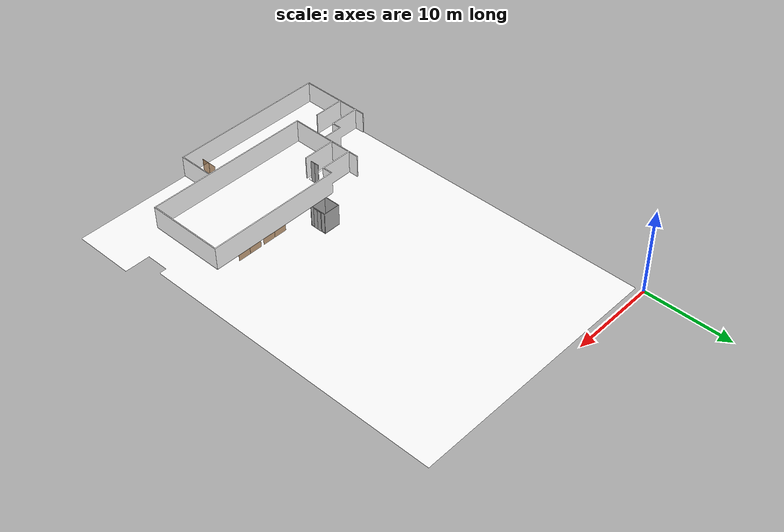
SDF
<sdf version="1.7">
 <world name="sim_world">
  <physics name="10ms" type="ode">
   <max_step_size>0.01</max_step_size>
   <real_time_factor>1.0</real_time_factor>
  </physics>
  <plugin filename="gz-sim-physics-system" name="gz::sim::systems::Physics"/>
  <plugin filename="gz-sim-user-commands-system" name="gz::sim::systems::UserCommands"/>
  <plugin filename="gz-sim-scene-broadcaster-system" name="gz::sim::systems::SceneBroadcaster"/>
  <plugin filename="libdoor.so" name="door"/>
  <plugin filename="liblift.so" name="lift"/>
  <scene><ambient>1 1 1</ambient><background>0.8 0.8 0.8</background><grid>false</grid></scene>
  <light type="directional" name="sun">
   <pose>0 0 10 0 0 0</pose>
   <diffuse>1 1 1 1</diffuse>
   <specular>0.2 0.2 0.2 1</specular>
   <attenuation>
    <range>1000</range>
    <constant>0.09</constant>
    <linear>0.001</linear>
    <quadratic>0.001</quadratic>
   </attenuation>
   <direction>-0.5 0.1 -0.9</direction>
  </light>
  <model name="main_door_right">
   <pose>22.008558835061166 -31.59895041664423 0.0 0 0 3.141583949309029</pose>
   <link name="right">
    <pose>0.7292035209816043 0 1.11 0 0 0</pose>
    <visual name="right_visual">
     <geometry><box><size>1.4484070419632087 0.03 2.2</size></box></geometry>
     <material>
      <ambient>0.5 0.25 0 0.6</ambient>
      <diffuse>0.5 0.25 0 0.6</diffuse>
      <pbr><metal><metalness>0.0</metalness></metal></pbr>
     </material>
    </visual>
    <collision name="right_collision">
     <geometry><box><size>1.4484070419632087 0.03 2.2</size></box></geometry>
     <surface><contact><collide_bitmask>0x02</collide_bitmask></contact></surface>
    </collision>
    <inertial>
     <mass>50.0</mass>
     <inertia><ixx>20.17041666666667</ixx><iyy>28.907845663369223</iyy><izz>8.744928996702553</izz></inertia>
    </inertial>
   </link>
   <joint name="right_joint" type="revolute">
    <parent>world</parent>
    <child>right</child>
    <axis><xyz>0 0 -1</xyz><limit><lower>0</lower><upper>1.57</upper></limit></axis>
    <pose>0.7292035209816043 0 0 0 0 0</pose>
   </joint>
   <link name="left">
    <pose>-0.7292035209816043 0 1.11 0 0 0</pose>
    <visual name="left_visual">
     <geometry><box><size>1.4484070419632087 0.03 2.2</size></box></geometry>
     <material>
      <ambient>0.5 0.25 0 0.6</ambient>
      <diffuse>0.5 0.25 0 0.6</diffuse>
      <pbr><metal><metalness>0.0</metalness></metal></pbr>
     </material>
    </visual>
    <collision name="left_collision">
     <geometry><box><size>1.4484070419632087 0.03 2.2</size></box></geometry>
     <surface><contact><collide_bitmask>0x02</collide_bitmask></contact></surface>
    </collision>
    <inertial>
     <mass>50.0</mass>
     <inertia><ixx>20.17041666666667</ixx><iyy>28.907845663369223</iyy><izz>8.744928996702553</izz></inertia>
    </inertial>
   </link>
   <joint name="left_joint" type="revolute">
    <parent>world</parent>
    <child>left</child>
    <axis><xyz>0 0 -1</xyz><limit><lower>-1.57</lower><upper>0</upper></limit></axis>
    <pose>-0.7292035209816043 0 0 0 0 0</pose>
   </joint>
   <plugin name="register_component" filename="libregister_component.so">
    <component name="Door">
     <v_max_door>0.5</v_max_door>
     <a_max_door>0.3</a_max_door>
     <a_nom_door>0.15</a_nom_door>
     <dx_min_door>0.01</dx_min_door>
     <f_max_door>500.0</f_max_door>
     <ros_interface>true</ros_interface>
     <door name="main_door_right" type="DoubleSwingDoor" left_joint_name="left_joint" right_joint_name="right_joint"/>
    </component>
   </plugin>
  </model>
  <model name="main_door_left">
   <pose>18.701532070316247 -31.60091804622047 0.0 0 0 0.001323547354239751</pose>
   <link name="right">
    <pose>0.7481124617256443 0 1.11 0 0 0</pose>
    <visual name="right_visual">
     <geometry><box><size>1.4862249234512885 0.03 2.2</size></box></geometry>
     <material>
      <ambient>0.5 0.25 0 0.6</ambient>
      <diffuse>0.5 0.25 0 0.6</diffuse>
      <pbr><metal><metalness>0.0</metalness></metal></pbr>
     </material>
    </visual>
    <collision name="right_collision">
     <geometry><box><size>1.4862249234512885 0.03 2.2</size></box></geometry>
     <surface><contact><collide_bitmask>0x02</collide_bitmask></contact></surface>
    </collision>
    <inertial>
     <mass>50.0</mass>
     <inertia><ixx>20.17041666666667</ixx><iyy>29.370268846199124</iyy><izz>9.207352179532453</izz></inertia>
    </inertial>
   </link>
   <joint name="right_joint" type="revolute">
    <parent>world</parent>
    <child>right</child>
    <axis><xyz>0 0 1</xyz><limit><lower>0</lower><upper>1.57</upper></limit></axis>
    <pose>0.7481124617256443 0 0 0 0 0</pose>
   </joint>
   <link name="left">
    <pose>-0.7481124617256443 0 1.11 0 0 0</pose>
    <visual name="left_visual">
     <geometry><box><size>1.4862249234512885 0.03 2.2</size></box></geometry>
     <material>
      <ambient>0.5 0.25 0 0.6</ambient>
      <diffuse>0.5 0.25 0 0.6</diffuse>
      <pbr><metal><metalness>0.0</metalness></metal></pbr>
     </material>
    </visual>
    <collision name="left_collision">
     <geometry><box><size>1.4862249234512885 0.03 2.2</size></box></geometry>
     <surface><contact><collide_bitmask>0x02</collide_bitmask></contact></surface>
    </collision>
    <inertial>
     <mass>50.0</mass>
     <inertia><ixx>20.17041666666667</ixx><iyy>29.370268846199124</iyy><izz>9.207352179532453</izz></inertia>
    </inertial>
   </link>
   <joint name="left_joint" type="revolute">
    <parent>world</parent>
    <child>left</child>
    <axis><xyz>0 0 1</xyz><limit><lower>-1.57</lower><upper>0</upper></limit></axis>
    <pose>-0.7481124617256443 0 0 0 0 0</pose>
   </joint>
   <plugin name="register_component" filename="libregister_component.so">
    <component name="Door">
     <v_max_door>0.5</v_max_door>
     <a_max_door>0.3</a_max_door>
     <a_nom_door>0.15</a_nom_door>
     <dx_min_door>0.01</dx_min_door>
     <f_max_door>500.0</f_max_door>
     <ros_interface>true</ros_interface>
     <door name="main_door_left" type="DoubleSwingDoor" left_joint_name="left_joint" right_joint_name="right_joint"/>
    </component>
   </plugin>
  </model>
  <model name="green_room_door">
   <pose>17.205308457391418 -34.86200383395631 0.0 0 0 1.5707963267948966</pose>
   <link name="right">
    <pose>0 0 1.11 0 0 0</pose>
    <visual name="right_visual">
     <geometry><box><size>0.9636592806289792 0.03 2.2</size></box></geometry>
     <material>
      <ambient>0.5 0.25 0 0.6</ambient>
      <diffuse>0.5 0.25 0 0.6</diffuse>
      <pbr><metal><metalness>0.0</metalness></metal></pbr>
     </material>
    </visual>
    <collision name="right_collision">
     <geometry><box><size>0.9636592806289792 0.03 2.2</size></box></geometry>
     <surface><contact><collide_bitmask>0x02</collide_bitmask></contact></surface>
    </collision>
    <inertial>
     <mass>50.0</mass>
     <inertia><ixx>20.17041666666667</ixx><iyy>24.035996704759846</iyy><izz>3.8730800380931742</izz></inertia>
    </inertial>
   </link>
   <joint name="right_joint" type="revolute">
    <parent>world</parent>
    <child>right</child>
    <axis><xyz>0 0 1</xyz><limit><lower>0</lower><upper>1.57</upper></limit></axis>
    <pose>0.4868296403144896 0 0 0 0 0</pose>
   </joint>
   <plugin name="register_component" filename="libregister_component.so">
    <component name="Door">
     <v_max_door>0.5</v_max_door>
     <a_max_door>0.3</a_max_door>
     <a_nom_door>0.15</a_nom_door>
     <dx_min_door>0.01</dx_min_door>
     <f_max_door>500.0</f_max_door>
     <ros_interface>true</ros_interface>
     <door name="green_room_door" type="SwingDoor" left_joint_name="empty_joint" right_joint_name="right_joint"/>
    </component>
   </plugin>
  </model>
  <model name="side_room_door">
   <pose>23.466965876969127 -34.816849908777726 0.0 0 0 1.5707963267948966</pose>
   <static>true</static>
   <link name="right">
    <pose>0 0 1.11 0 0 0</pose>
    <visual name="right_visual">
     <geometry><box><size>0.8754333093073166 0.03 2.2</size></box></geometry>
     <material>
      <ambient>0.5 0.25 0 0.6</ambient>
      <diffuse>0.5 0.25 0 0.6</diffuse>
      <pbr><metal><metalness>0.0</metalness></metal></pbr>
     </material>
    </visual>
    <collision name="right_collision">
     <geometry><box><size>0.8754333093073166 0.03 2.2</size></box></geometry>
     <surface><contact><collide_bitmask>0x02</collide_bitmask></contact></surface>
    </collision>
    <inertial>
     <mass>50.0</mass>
     <inertia><ixx>20.17041666666667</ixx><iyy>23.359931162686504</iyy><izz>3.1970144960198326</izz></inertia>
    </inertial>
   </link>
   <joint name="right_joint" type="revolute">
    <parent>world</parent>
    <child>right</child>
    <axis><xyz>0 0 -1</xyz><limit><lower>0</lower><upper>1.57</upper></limit></axis>
    <pose>0.4427166546536583 0 0 0 0 0</pose>
   </joint>
  </model>
  <model name="bottom_stairs_door">
   <pose>17.004381741696562 -43.25836162237169 0.0 0 0 1.5629671816468744</pose>
   <static>true</static>
   <link name="right">
    <pose>0.47508285335173855 0 1.11 0 0 0</pose>
    <visual name="right_visual">
     <geometry><box><size>0.9401657067034771 0.03 2.2</size></box></geometry>
     <material>
      <ambient>0.5 0.25 0 0.6</ambient>
      <diffuse>0.5 0.25 0 0.6</diffuse>
      <pbr><metal><metalness>0.0</metalness></metal></pbr>
     </material>
    </visual>
    <collision name="right_collision">
     <geometry><box><size>0.9401657067034771 0.03 2.2</size></box></geometry>
     <surface><contact><collide_bitmask>0x02</collide_bitmask></contact></surface>
    </collision>
    <inertial>
     <mass>50.0</mass>
     <inertia><ixx>20.17041666666667</ixx><iyy>23.849631483588542</iyy><izz>3.686714816921869</izz></inertia>
    </inertial>
   </link>
   <joint name="right_joint" type="revolute">
    <parent>world</parent>
    <child>right</child>
    <axis><xyz>0 0 1</xyz><limit><lower>0</lower><upper>1.57</upper></limit></axis>
    <pose>0.47508285335173855 0 0 0 0 0</pose>
   </joint>
   <link name="left">
    <pose>-0.47508285335173855 0 1.11 0 0 0</pose>
    <visual name="left_visual">
     <geometry><box><size>0.9401657067034771 0.03 2.2</size></box></geometry>
     <material>
      <ambient>0.5 0.25 0 0.6</ambient>
      <diffuse>0.5 0.25 0 0.6</diffuse>
      <pbr><metal><metalness>0.0</metalness></metal></pbr>
     </material>
    </visual>
    <collision name="left_collision">
     <geometry><box><size>0.9401657067034771 0.03 2.2</size></box></geometry>
     <surface><contact><collide_bitmask>0x02</collide_bitmask></contact></surface>
    </collision>
    <inertial>
     <mass>50.0</mass>
     <inertia><ixx>20.17041666666667</ixx><iyy>23.849631483588542</iyy><izz>3.686714816921869</izz></inertia>
    </inertial>
   </link>
   <joint name="left_joint" type="revolute">
    <parent>world</parent>
    <child>left</child>
    <axis><xyz>0 0 1</xyz><limit><lower>-1.57</lower><upper>0</upper></limit></axis>
    <pose>-0.47508285335173855 0 0 0 0 0</pose>
   </joint>
  </model>
  <include><name>kioto_L1</name><uri>model://kioto_L1</uri></include>
  <include><name>kioto_L2</name><uri>model://kioto_L2</uri><pose>0 0 6.0 0 0 0</pose></include>
  <model name="ShaftDoor_lift_L1_door">
   <pose>14.886878955483498 -29.32402787813475 0.0 0 0 1.57</pose>
   <link name="right_door">
    <pose>0.25 0 1.25 0 0 0</pose>
    <visual name="right_door_visual">
     <geometry><box><size>0.5 0.03 2.5</size></box></geometry>
     <material>
      <ambient>0.5 0.5 0.5 1</ambient>
      <diffuse>0.7 0.7 0.7 1</diffuse>
      <specular>0.6 0.6 0.6 1</specular>
      <emissive>0.1 0.1 0.1 1</emissive>
     </material>
    </visual>
    <collision name="right_door_collision">
     <geometry><box><size>0.5 0.03 2.5</size></box></geometry>
     <surface><contact><collide_bitmask>0x02</collide_bitmask></contact></surface>
    </collision>
   </link>
   <link name="left_door">
    <pose>-0.25 0 1.25 0 0 0</pose>
    <visual name="left_door_visual">
     <geometry><box><size>0.5 0.03 2.5</size></box></geometry>
     <material>
      <ambient>0.5 0.5 0.5 1</ambient>
      <diffuse>0.7 0.7 0.7 1</diffuse>
      <specular>0.6 0.6 0.6 1</specular>
      <emissive>0.1 0.1 0.1 1</emissive>
     </material>
    </visual>
    <collision name="left_door_collision">
     <geometry><box><size>0.5 0.03 2.5</size></box></geometry>
     <surface><contact><collide_bitmask>0x02</collide_bitmask></contact></surface>
    </collision>
   </link>
   <joint name="right_joint" type="prismatic">
    <parent>world</parent>
    <child>right_door</child>
    <axis><xyz>1 0 0</xyz><limit><lower>0</lower><upper>0.5</upper></limit></axis>
   </joint>
   <joint name="left_joint" type="prismatic">
    <parent>world</parent>
    <child>left_door</child>
    <axis><xyz>1 0 0</xyz><limit><lower>-0.5</lower><upper>0</upper></limit></axis>
   </joint>
   <link name="ramp">
    <pose>0 0 -0.025 0 0 0</pose>
    <visual name="ramp_visual">
     <geometry><box><size>1.0 0.1 0.05</size></box></geometry>
     <material>
      <ambient>0.5 0.5 0.5 1</ambient>
      <diffuse>0.7 0.7 0.7 1</diffuse>
      <specular>0.6 0.6 0.6 1</specular>
      <emissive>0.1 0.1 0.1 1</emissive>
     </material>
    </visual>
    <collision name="ramp_collision">
     <geometry><box><size>1.0 0.1 0.05</size></box></geometry>
     <surface><contact><collide_bitmask>0x02</collide_bitmask></contact></surface>
    </collision>
   </link>
   <joint name="ramp_joint" type="fixed"><parent>world</parent><child>ramp</child></joint>
   <plugin name="register_component" filename="libregister_component.so">
    <component name="Door">
     <v_max_door>0.3</v_max_door>
     <a_max_door>0.2</a_max_door>
     <a_nom_door>0.1</a_nom_door>
     <dx_min_door>0.0001</dx_min_door>
     <f_max_door>35.0</f_max_door>
     <door left_joint_name="left_joint" name="ShaftDoor_lift_L1_door" right_joint_name="right_joint" type="DoubleSlidingDoor"/>
    </component>
   </plugin>
  </model>
  <model name="ShaftDoor_lift_L2_door">
   <pose>14.886878955483498 -29.32402787813475 6.0 0 0 1.57</pose>
   <link name="right_door">
    <pose>0.25 0 1.25 0 0 0</pose>
    <visual name="right_door_visual">
     <geometry><box><size>0.5 0.03 2.5</size></box></geometry>
     <material>
      <ambient>0.5 0.5 0.5 1</ambient>
      <diffuse>0.7 0.7 0.7 1</diffuse>
      <specular>0.6 0.6 0.6 1</specular>
      <emissive>0.1 0.1 0.1 1</emissive>
     </material>
    </visual>
    <collision name="right_door_collision">
     <geometry><box><size>0.5 0.03 2.5</size></box></geometry>
     <surface><contact><collide_bitmask>0x02</collide_bitmask></contact></surface>
    </collision>
   </link>
   <link name="left_door">
    <pose>-0.25 0 1.25 0 0 0</pose>
    <visual name="left_door_visual">
     <geometry><box><size>0.5 0.03 2.5</size></box></geometry>
     <material>
      <ambient>0.5 0.5 0.5 1</ambient>
      <diffuse>0.7 0.7 0.7 1</diffuse>
      <specular>0.6 0.6 0.6 1</specular>
      <emissive>0.1 0.1 0.1 1</emissive>
     </material>
    </visual>
    <collision name="left_door_collision">
     <geometry><box><size>0.5 0.03 2.5</size></box></geometry>
     <surface><contact><collide_bitmask>0x02</collide_bitmask></contact></surface>
    </collision>
   </link>
   <joint name="right_joint" type="prismatic">
    <parent>world</parent>
    <child>right_door</child>
    <axis><xyz>1 0 0</xyz><limit><lower>0</lower><upper>0.5</upper></limit></axis>
   </joint>
   <joint name="left_joint" type="prismatic">
    <parent>world</parent>
    <child>left_door</child>
    <axis><xyz>1 0 0</xyz><limit><lower>-0.5</lower><upper>0</upper></limit></axis>
   </joint>
   <link name="ramp">
    <pose>0 0 -0.025 0 0 0</pose>
    <visual name="ramp_visual">
     <geometry><box><size>1.0 0.1 0.05</size></box></geometry>
     <material>
      <ambient>0.5 0.5 0.5 1</ambient>
      <diffuse>0.7 0.7 0.7 1</diffuse>
      <specular>0.6 0.6 0.6 1</specular>
      <emissive>0.1 0.1 0.1 1</emissive>
     </material>
    </visual>
    <collision name="ramp_collision">
     <geometry><box><size>1.0 0.1 0.05</size></box></geometry>
     <surface><contact><collide_bitmask>0x02</collide_bitmask></contact></surface>
    </collision>
   </link>
   <joint name="ramp_joint" type="fixed"><parent>world</parent><child>ramp</child></joint>
   <plugin name="register_component" filename="libregister_component.so">
    <component name="Door">
     <v_max_door>0.3</v_max_door>
     <a_max_door>0.2</a_max_door>
     <a_nom_door>0.1</a_nom_door>
     <dx_min_door>0.0001</dx_min_door>
     <f_max_door>35.0</f_max_door>
     <door left_joint_name="left_joint" name="ShaftDoor_lift_L2_door" right_joint_name="right_joint" type="DoubleSlidingDoor"/>
    </component>
   </plugin>
  </model>
  <model name="lift">
   <link name="platform">
    <inertial>
     <mass>1200</mass>
     <inertia><ixx>400.25000000000006</ixx><iyy>400.25000000000006</iyy><izz>800.0</izz></inertia>
    </inertial>
    <visual name="floor_visual">
     <pose>0 0 -0.025 0 0 0</pose>
     <geometry><box><size>2.0 2.0 0.05</size></box></geometry>
     <material>
      <ambient>0.5 0.5 0.5 1</ambient>
      <diffuse>0.7 0.7 0.7 1</diffuse>
      <specular>0.6 0.6 0.6 1</specular>
      <emissive>0.1 0.1 0.1 1</emissive>
     </material>
    </visual>
    <collision name="floor_collision">
     <pose>0 0 -0.025 0 0 0</pose>
     <geometry><box><size>2.0 2.0 0.05</size></box></geometry>
     <surface><contact><collide_bitmask>0x01</collide_bitmask></contact></surface>
    </collision>
    <visual name="frontwall1_visual">
     <pose>0.0 0.975 1.25 0 0 0</pose>
     <geometry><box><size>2.0 0.05 2.5</size></box></geometry>
     <material>
      <ambient>0.5 0.5 0.5 1</ambient>
      <diffuse>0.7 0.7 0.7 1</diffuse>
      <specular>0.6 0.6 0.6 1</specular>
      <emissive>0.1 0.1 0.1 1</emissive>
     </material>
    </visual>
    <collision name="frontwall1_collision">
     <pose>0.0 0.975 1.25 0 0 0</pose>
     <geometry><box><size>2.0 0.05 2.5</size></box></geometry>
     <surface><contact><collide_bitmask>0x01</collide_bitmask></contact></surface>
    </collision>
    <visual name="backwall1_visual">
     <pose>0.0 -0.975 1.25 0 0 0</pose>
     <geometry><box><size>2.0 0.05 2.5</size></box></geometry>
     <material>
      <ambient>0.5 0.5 0.5 1</ambient>
      <diffuse>0.7 0.7 0.7 1</diffuse>
      <specular>0.6 0.6 0.6 1</specular>
      <emissive>0.1 0.1 0.1 1</emissive>
     </material>
    </visual>
    <collision name="backwall1_collision">
     <pose>0.0 -0.975 1.25 0 0 0</pose>
     <geometry><box><size>2.0 0.05 2.5</size></box></geometry>
     <surface><contact><collide_bitmask>0x01</collide_bitmask></contact></surface>
    </collision>
    <visual name="leftwall1_visual">
     <pose>-0.975 0.0 1.25 0 0 1.5707963267948966</pose>
     <geometry><box><size>1.9 0.05 2.5</size></box></geometry>
     <material>
      <ambient>0.5 0.5 0.5 1</ambient>
      <diffuse>0.7 0.7 0.7 1</diffuse>
      <specular>0.6 0.6 0.6 1</specular>
      <emissive>0.1 0.1 0.1 1</emissive>
     </material>
    </visual>
    <collision name="leftwall1_collision">
     <pose>-0.975 0.0 1.25 0 0 1.5707963267948966</pose>
     <geometry><box><size>1.9 0.05 2.5</size></box></geometry>
     <surface><contact><collide_bitmask>0x01</collide_bitmask></contact></surface>
    </collision>
    <visual name="rightwall1_visual">
     <pose>0.975 -0.725 1.25 0 0 1.5707963267948966</pose>
     <geometry><box><size>0.44999999999999996 0.05 2.5</size></box></geometry>
     <material>
      <ambient>0.5 0.5 0.5 1</ambient>
      <diffuse>0.7 0.7 0.7 1</diffuse>
      <specular>0.6 0.6 0.6 1</specular>
      <emissive>0.1 0.1 0.1 1</emissive>
     </material>
    </visual>
    <collision name="rightwall1_collision">
     <pose>0.975 -0.725 1.25 0 0 1.5707963267948966</pose>
     <geometry><box><size>0.44999999999999996 0.05 2.5</size></box></geometry>
     <surface><contact><collide_bitmask>0x01</collide_bitmask></contact></surface>
    </collision>
    <visual name="rightwall2_visual">
     <pose>0.975 0.725 1.25 0 0 1.5707963267948966</pose>
     <geometry><box><size>0.44999999999999996 0.05 2.5</size></box></geometry>
     <material>
      <ambient>0.5 0.5 0.5 1</ambient>
      <diffuse>0.7 0.7 0.7 1</diffuse>
      <specular>0.6 0.6 0.6 1</specular>
      <emissive>0.1 0.1 0.1 1</emissive>
     </material>
    </visual>
    <collision name="rightwall2_collision">
     <pose>0.975 0.725 1.25 0 0 1.5707963267948966</pose>
     <geometry><box><size>0.44999999999999996 0.05 2.5</size></box></geometry>
     <surface><contact><collide_bitmask>0x01</collide_bitmask></contact></surface>
    </collision>
   </link>
   <joint name="cabin_joint" type="prismatic">
    <parent>world</parent>
    <child>platform</child>
    <axis><xyz>0 0 1</xyz></axis>
   </joint>
   <model name="CabinDoor_lift_door">
    <pose>0.975 0.0 0 0 0 1.57</pose>
    <link name="right_door">
     <pose>0.25 0 1.25 0 0 0</pose>
     <visual name="right_door_visual">
      <geometry><box><size>0.5 0.03 2.5</size></box></geometry>
      <material>
       <ambient>0.5 0.5 0.5 1</ambient>
       <diffuse>0.7 0.7 0.7 1</diffuse>
       <specular>0.6 0.6 0.6 1</specular>
       <emissive>0.1 0.1 0.1 1</emissive>
      </material>
     </visual>
     <collision name="right_door_collision">
      <geometry><box><size>0.5 0.03 2.5</size></box></geometry>
      <surface><contact><collide_bitmask>0x02</collide_bitmask></contact></surface>
     </collision>
    </link>
    <link name="left_door">
     <pose>-0.25 0 1.25 0 0 0</pose>
     <visual name="left_door_visual">
      <geometry><box><size>0.5 0.03 2.5</size></box></geometry>
      <material>
       <ambient>0.5 0.5 0.5 1</ambient>
       <diffuse>0.7 0.7 0.7 1</diffuse>
       <specular>0.6 0.6 0.6 1</specular>
       <emissive>0.1 0.1 0.1 1</emissive>
      </material>
     </visual>
     <collision name="left_door_collision">
      <geometry><box><size>0.5 0.03 2.5</size></box></geometry>
      <surface><contact><collide_bitmask>0x02</collide_bitmask></contact></surface>
     </collision>
    </link>
    <plugin name="register_component" filename="libregister_component.so">
     <component name="Door">
      <v_max_door>0.3</v_max_door>
      <a_max_door>0.2</a_max_door>
      <a_nom_door>0.1</a_nom_door>
      <dx_min_door>0.0001</dx_min_door>
      <f_max_door>35.0</f_max_door>
      <door left_joint_name="CabinDoor_lift_door_left_joint" name="CabinDoor_lift_door" right_joint_name="CabinDoor_lift_door_right_joint" type="DoubleSlidingDoor"/>
     </component>
    </plugin>
   </model>
   <joint name="CabinDoor_lift_door_right_joint" type="prismatic">
    <parent>platform</parent>
    <child>CabinDoor_lift_door::right_door</child>
    <axis><xyz>1 0 0</xyz><limit><lower>0</lower><upper>0.5</upper></limit></axis>
   </joint>
   <joint name="CabinDoor_lift_door_left_joint" type="prismatic">
    <parent>platform</parent>
    <child>CabinDoor_lift_door::left_door</child>
    <axis><xyz>1 0 0</xyz><limit><lower>-0.5</lower><upper>0</upper></limit></axis>
   </joint>
   <plugin name="register_component" filename="libregister_component.so">
    <component name="Lift">
     <lift_name>lift</lift_name>
     <floor name="L1" elevation="0.0">
      <door_pair cabin_door="CabinDoor_lift_door" shaft_door="ShaftDoor_lift_L1_door"/>
     </floor>
     <floor name="L2" elevation="6.0">
      <door_pair cabin_door="CabinDoor_lift_door" shaft_door="ShaftDoor_lift_L2_door"/>
     </floor>
     <initial_floor>L1</initial_floor>
     <v_max_cabin>2.0</v_max_cabin>
     <a_max_cabin>1.2</a_max_cabin>
     <a_nom_cabin>1.0</a_nom_cabin>
     <dx_min_cabin>0.001</dx_min_cabin>
     <f_max_cabin>25323.0</f_max_cabin>
     <cabin_joint_name>cabin_joint</cabin_joint_name>
    </component>
   </plugin>
   <pose>13.836878955483497 -29.32402787813475 0 0 0 0.0</pose>
  </model>
  <plugin name="register_component" filename="libregister_component.so">
   <component name="Chargers">
    <rmf_charger name="charger_1" x="26.275446084632666" y="-7.794783607845279" z="0.0"/>
    <rmf_charger name="charger_2" x="14.742115504396825" y="-7.8907785423969905" z="0.0"/>
    <rmf_charger name="charger_3" x="22.63959668173739" y="-26.383145241566904" z="0.0"/>
   </component>
  </plugin>
 </world>
</sdf>

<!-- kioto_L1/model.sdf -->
<sdf version="1.7">
  <model name="kioto_L1">
    <static>true</static>
    <link name="floor_1">
      <visual name="visual">
        <geometry>
          <mesh>
            <uri>model://kioto_L1/meshes/floor_1.obj</uri>
          </mesh>
        </geometry>
        <material>
          <diffuse>1.0 1.0 1.0</diffuse>
          <specular>0.1 0.1 0.1</specular>
          <pbr>
            <metal>
              <metalness>0.0</metalness>
              <albedo_map>model://kioto_L1/meshes/blue_linoleum.png</albedo_map>
            </metal>
          </pbr>
          <script>
            <uri>model://kioto_L1/meshes/</uri>
            <name>floor_1_Diffuse</name>
          </script>
        </material>
      </visual>
      <collision name="collision">
        <geometry>
          <mesh>
            <uri>model://kioto_L1/meshes/floor_1.obj</uri>
          </mesh>
        </geometry>
        <surface>
          <contact>
            <collide_bitmask>0x01</collide_bitmask>
          </contact>
        </surface>
      </collision>
    </link>
    <link name="wall_1">
      <visual name="wall_1">
        <geometry>
          <mesh>
            <uri>model://kioto_L1/meshes/wall_1.obj</uri>
          </mesh>
        </geometry>
        <transparency>0.0</transparency>
        <material>
          <diffuse>1.0 1.0 1.0</diffuse>
          <specular>0.1 0.1 0.1</specular>
          <pbr>
            <metal>
              <metalness>0.0</metalness>
              <albedo_map>model://kioto_L1/meshes/default.png</albedo_map>
            </metal>
          </pbr>
          <script>
            <uri>model://kioto_L1/meshes/</uri>
            <name>wall_1_Diffuse</name>
          </script>
        </material>
      </visual>
      <collision name="collision">
        <geometry>
          <mesh>
            <uri>model://kioto_L1/meshes/wall_1.obj</uri>
          </mesh>
        </geometry>
        <surface>
          <contact>
            <collide_bitmask>0x01</collide_bitmask>
          </contact>
        </surface>
      </collision>
      <pose>0.09101157253205372 -45.72279544502865 0 0 0 0</pose>
    </link>
  </model>
</sdf>

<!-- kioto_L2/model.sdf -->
<sdf version="1.7">
  <model name="kioto_L2">
    <static>true</static>
    <link name="floor_1">
      <visual name="visual">
        <geometry>
          <mesh>
            <uri>model://kioto_L2/meshes/floor_1.obj</uri>
          </mesh>
        </geometry>
        <material>
          <diffuse>1.0 1.0 1.0</diffuse>
          <specular>0.1 0.1 0.1</specular>
          <pbr>
            <metal>
              <metalness>0.0</metalness>
              <albedo_map>model://kioto_L2/meshes/blue_linoleum.png</albedo_map>
            </metal>
          </pbr>
          <script>
            <uri>model://kioto_L2/meshes/</uri>
            <name>floor_1_Diffuse</name>
          </script>
        </material>
      </visual>
      <collision name="collision">
        <geometry>
          <mesh>
            <uri>model://kioto_L2/meshes/floor_1.obj</uri>
          </mesh>
        </geometry>
        <surface>
          <contact>
            <collide_bitmask>0x01</collide_bitmask>
          </contact>
        </surface>
      </collision>
    </link>
    <link name="wall_1">
      <visual name="wall_1">
        <geometry>
          <mesh>
            <uri>model://kioto_L2/meshes/wall_1.obj</uri>
          </mesh>
        </geometry>
        <transparency>0.0</transparency>
        <material>
          <diffuse>1.0 1.0 1.0</diffuse>
          <specular>0.1 0.1 0.1</specular>
          <pbr>
            <metal>
              <metalness>0.0</metalness>
              <albedo_map>model://kioto_L2/meshes/default.png</albedo_map>
            </metal>
          </pbr>
          <script>
            <uri>model://kioto_L2/meshes/</uri>
            <name>wall_1_Diffuse</name>
          </script>
        </material>
      </visual>
      <collision name="collision">
        <geometry>
          <mesh>
            <uri>model://kioto_L2/meshes/wall_1.obj</uri>
          </mesh>
        </geometry>
        <surface>
          <contact>
            <collide_bitmask>0x01</collide_bitmask>
          </contact>
        </surface>
      </collision>
      <pose>11.247244569146632 -35.53699251530461 0 0 0 0</pose>
    </link>
  </model>
</sdf>
